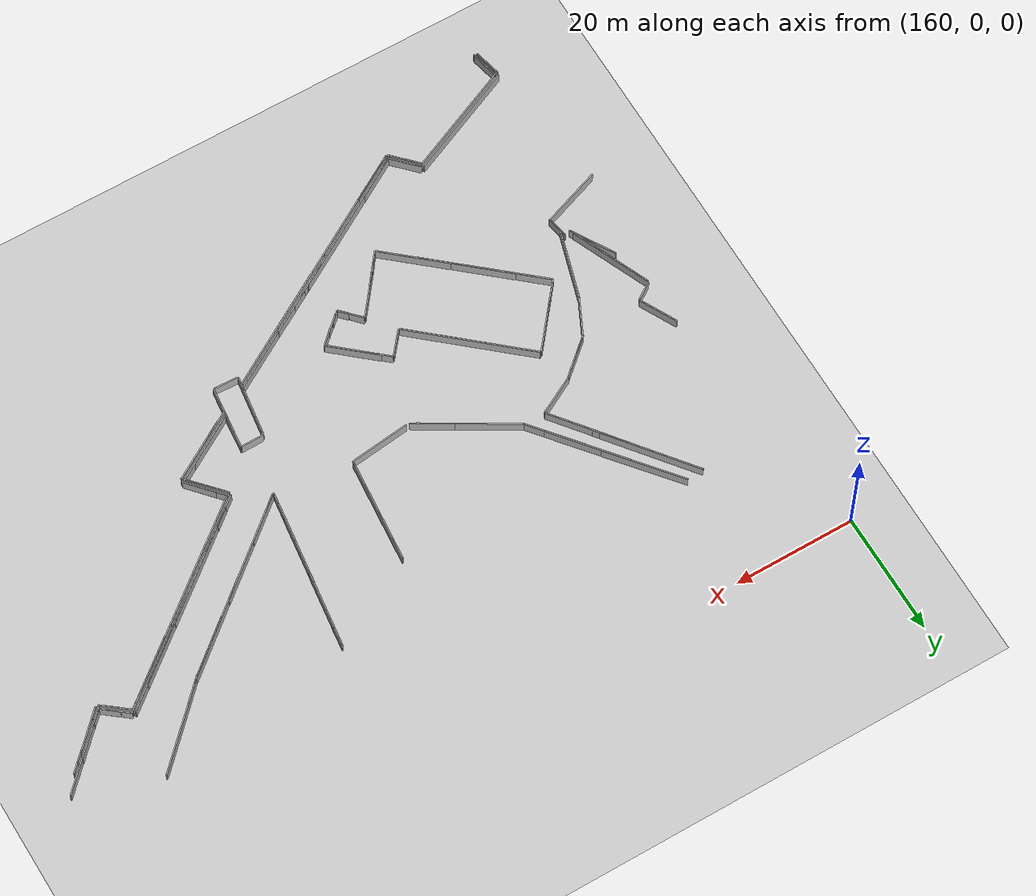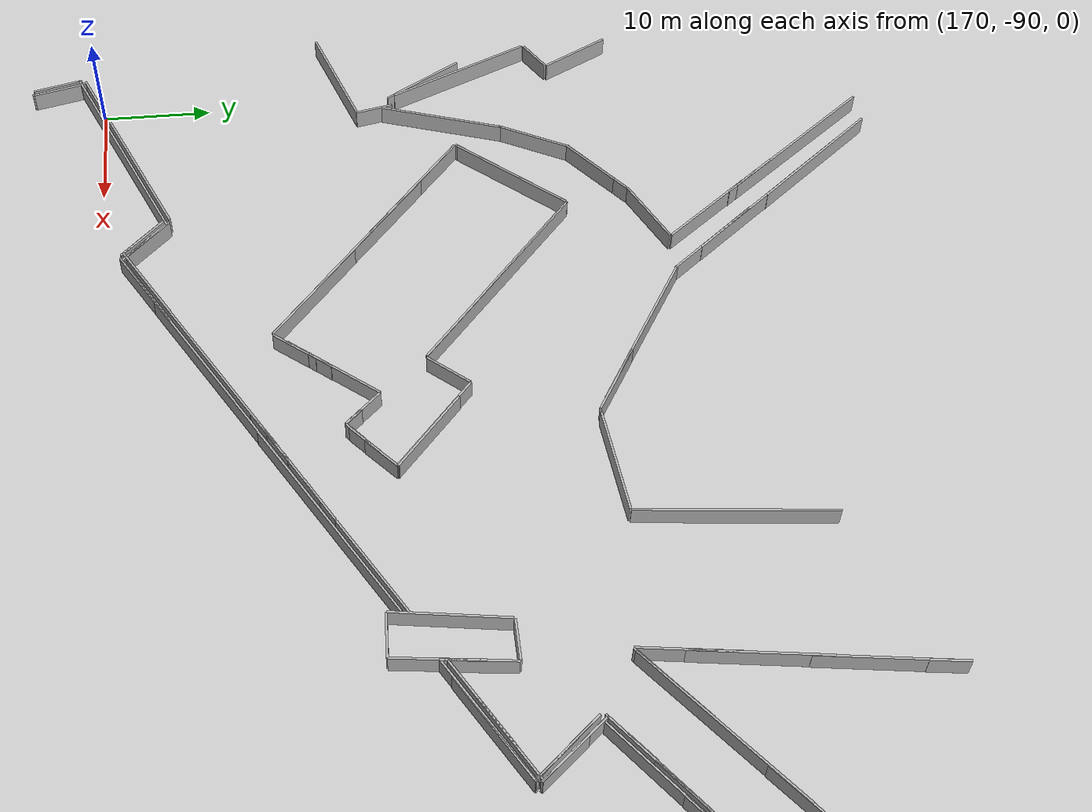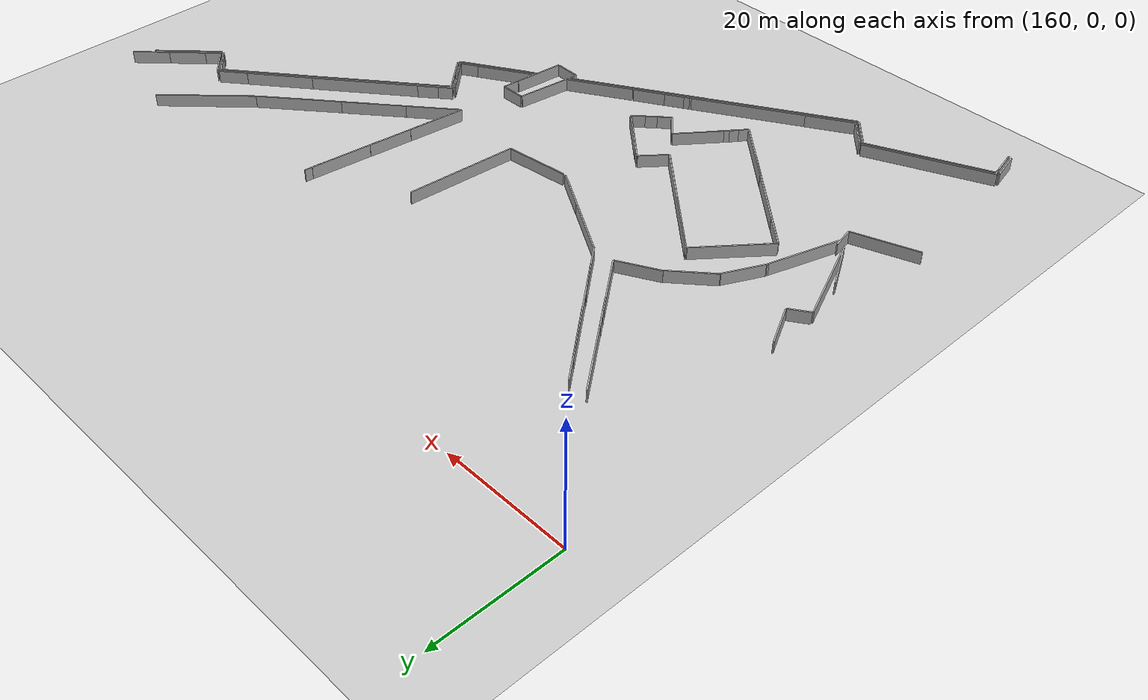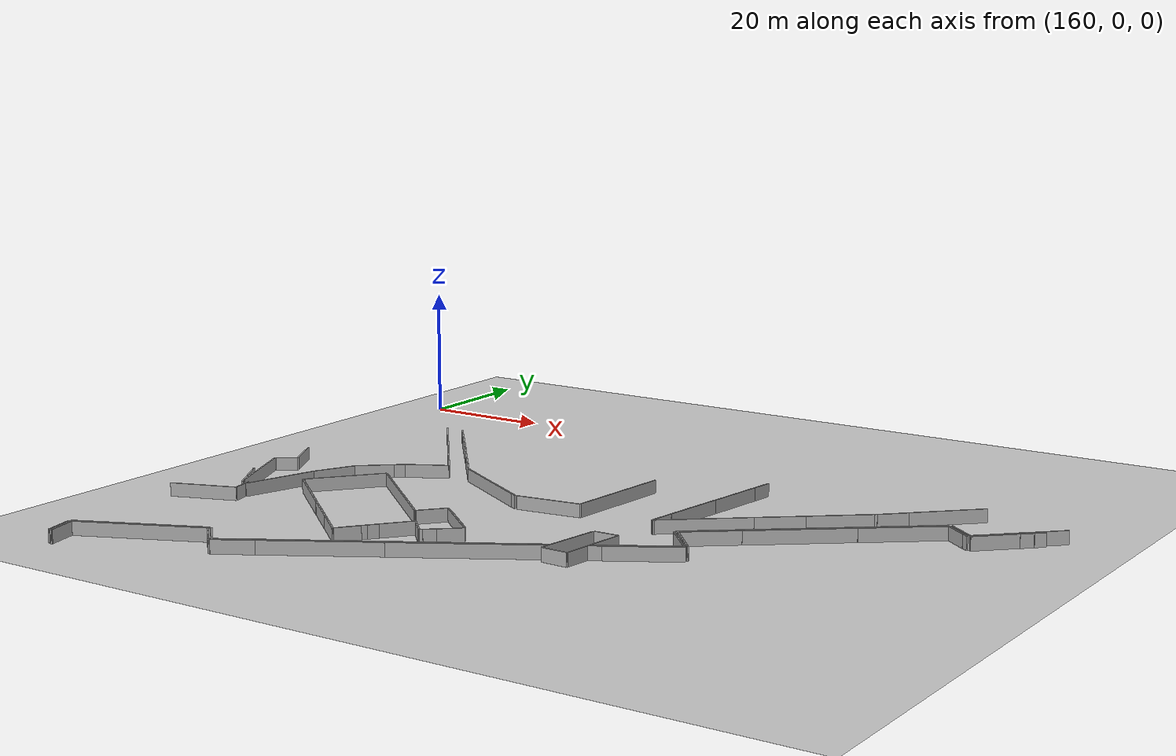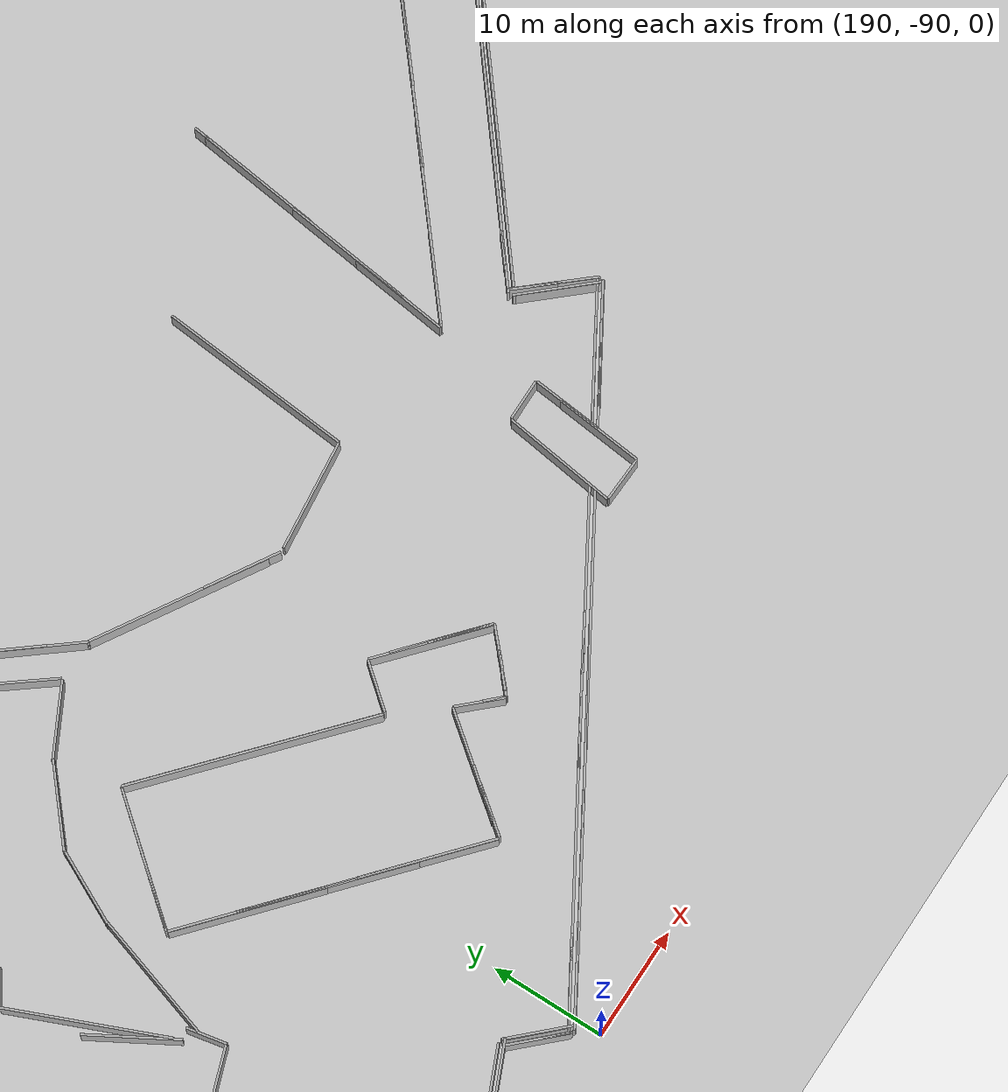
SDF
<sdf version="1.7">
 <world name="slam_world">
  <model name="ground_plane">
   <static>1</static>
   <link name="link">
    <collision name="collision">
     <geometry><plane><normal>0 0 1</normal><size>100 100</size></plane></geometry>
    </collision>
    <visual name="visual">
     <geometry><plane><normal>0 0 1</normal><size>100 100</size></plane></geometry>
     <material>
      <ambient>0.8 0.8 0.8 1</ambient>
      <diffuse>0.8 0.8 0.8 1</diffuse>
      <specular>0.8 0.8 0.8 1</specular>
     </material>
    </visual>
   </link>
  </model>
  <model name="wall_21">
   <static>1</static>
   <pose>257.001 -26.325 1 0 -0 0.741947</pose>
   <link name="link">
    <collision name="collision"><geometry><box><size>0.813941 0.2 2</size></box></geometry></collision>
    <visual name="visual">
     <geometry><box><size>0.813941 0.2 2</size></box></geometry>
     <material><ambient>0.5 0.5 0.5 1</ambient><diffuse>0.7 0.7 0.7 1</diffuse></material>
    </visual>
   </link>
  </model>
  <model name="wall_24">
   <static>1</static>
   <pose>206.051 -78 1 0 -0 0.539799</pose>
   <link name="link">
    <collision name="collision"><geometry><box><size>27.6284 0.2 2</size></box></geometry></collision>
    <visual name="visual">
     <geometry><box><size>27.6284 0.2 2</size></box></geometry>
     <material><ambient>0.5 0.5 0.5 1</ambient><diffuse>0.7 0.7 0.7 1</diffuse></material>
    </visual>
   </link>
  </model>
  <model name="wall_25">
   <static>1</static>
   <pose>199.426 -81.375 1 0 -0 0.539749</pose>
   <link name="link">
    <collision name="collision"><geometry><box><size>25.5876 0.2 2</size></box></geometry></collision>
    <visual name="visual">
     <geometry><box><size>25.5876 0.2 2</size></box></geometry>
     <material><ambient>0.5 0.5 0.5 1</ambient><diffuse>0.7 0.7 0.7 1</diffuse></material>
    </visual>
   </link>
  </model>
  <model name="wall_36">
   <static>1</static>
   <pose>218.126 -70.8 1 0 -0 0.540019</pose>
   <link name="link">
    <collision name="collision"><geometry><box><size>21.3944 0.2 2</size></box></geometry></collision>
    <visual name="visual">
     <geometry><box><size>21.3944 0.2 2</size></box></geometry>
     <material><ambient>0.5 0.5 0.5 1</ambient><diffuse>0.7 0.7 0.7 1</diffuse></material>
    </visual>
   </link>
  </model>
  <model name="wall_43">
   <static>1</static>
   <pose>182.876 -61.05 1 0 0 -0.71275</pose>
   <link name="link">
    <collision name="collision"><geometry><box><size>13.1515 0.2 2</size></box></geometry></collision>
    <visual name="visual">
     <geometry><box><size>13.1515 0.2 2</size></box></geometry>
     <material><ambient>0.5 0.5 0.5 1</ambient><diffuse>0.7 0.7 0.7 1</diffuse></material>
    </visual>
   </link>
  </model>
  <model name="wall_47">
   <static>1</static>
   <pose>175.776 -87.725 1 0 -0 0.419509</pose>
   <link name="link">
    <collision name="collision"><geometry><box><size>19.7637 0.2 2</size></box></geometry></collision>
    <visual name="visual">
     <geometry><box><size>19.7637 0.2 2</size></box></geometry>
     <material><ambient>0.5 0.5 0.5 1</ambient><diffuse>0.7 0.7 0.7 1</diffuse></material>
    </visual>
   </link>
  </model>
  <model name="wall_49">
   <static>1</static>
   <pose>193.976 -54.1 1 0 0 -0.715593</pose>
   <link name="link">
    <collision name="collision"><geometry><box><size>21.7966 0.2 2</size></box></geometry></collision>
    <visual name="visual">
     <geometry><box><size>21.7966 0.2 2</size></box></geometry>
     <material><ambient>0.5 0.5 0.5 1</ambient><diffuse>0.7 0.7 0.7 1</diffuse></material>
    </visual>
   </link>
  </model>
  <model name="wall_54">
   <static>1</static>
   <pose>274.076 -27.625 1 0 -0 0.785398</pose>
   <link name="link">
    <collision name="collision"><geometry><box><size>7.56604 0.2 2</size></box></geometry></collision>
    <visual name="visual">
     <geometry><box><size>7.56604 0.2 2</size></box></geometry>
     <material><ambient>0.5 0.5 0.5 1</ambient><diffuse>0.7 0.7 0.7 1</diffuse></material>
    </visual>
   </link>
  </model>
  <model name="wall_56">
   <static>1</static>
   <pose>181.751 -51.85 1 0 -0 0.88848</pose>
   <link name="link">
    <collision name="collision"><geometry><box><size>12.3693 0.2 2</size></box></geometry></collision>
    <visual name="visual">
     <geometry><box><size>12.3693 0.2 2</size></box></geometry>
     <material><ambient>0.5 0.5 0.5 1</ambient><diffuse>0.7 0.7 0.7 1</diffuse></material>
    </visual>
   </link>
  </model>
  <model name="wall_62">
   <static>1</static>
   <pose>277.051 -24 1 0 -0 0.785398</pose>
   <link name="link">
    <collision name="collision"><geometry><box><size>11.4551 0.2 2</size></box></geometry></collision>
    <visual name="visual">
     <geometry><box><size>11.4551 0.2 2</size></box></geometry>
     <material><ambient>0.5 0.5 0.5 1</ambient><diffuse>0.7 0.7 0.7 1</diffuse></material>
    </visual>
   </link>
  </model>
  <model name="wall_63">
   <static>1</static>
   <pose>180.026 -24.325 1 0 0 -0.909753</pose>
   <link name="link">
    <collision name="collision"><geometry><box><size>16.5325 0.2 2</size></box></geometry></collision>
    <visual name="visual">
     <geometry><box><size>16.5325 0.2 2</size></box></geometry>
     <material><ambient>0.5 0.5 0.5 1</ambient><diffuse>0.7 0.7 0.7 1</diffuse></material>
    </visual>
   </link>
  </model>
  <model name="wall_64">
   <static>1</static>
   <pose>168.301 -55.525 1 0 0 -1.16917</pose>
   <link name="link">
    <collision name="collision"><geometry><box><size>14.0696 0.2 2</size></box></geometry></collision>
    <visual name="visual">
     <geometry><box><size>14.0696 0.2 2</size></box></geometry>
     <material><ambient>0.5 0.5 0.5 1</ambient><diffuse>0.7 0.7 0.7 1</diffuse></material>
    </visual>
   </link>
  </model>
  <model name="wall_66">
   <static>1</static>
   <pose>187.476 -33.975 1 0 0 -0.907969</pose>
   <link name="link">
    <collision name="collision"><geometry><box><size>9.83184 0.2 2</size></box></geometry></collision>
    <visual name="visual">
     <geometry><box><size>9.83184 0.2 2</size></box></geometry>
     <material><ambient>0.5 0.5 0.5 1</ambient><diffuse>0.7 0.7 0.7 1</diffuse></material>
    </visual>
   </link>
  </model>
  <model name="wall_69">
   <static>1</static>
   <pose>176.026 -88.125 1 0 -0 0.418966</pose>
   <link name="link">
    <collision name="collision"><geometry><box><size>20.5252 0.2 2</size></box></geometry></collision>
    <visual name="visual">
     <geometry><box><size>20.5252 0.2 2</size></box></geometry>
     <material><ambient>0.5 0.5 0.5 1</ambient><diffuse>0.7 0.7 0.7 1</diffuse></material>
    </visual>
   </link>
  </model>
  <model name="wall_70">
   <static>1</static>
   <pose>190.401 -67.5 1 0 0 -0.714091</pose>
   <link name="link">
    <collision name="collision"><geometry><box><size>21.8344 0.2 2</size></box></geometry></collision>
    <visual name="visual">
     <geometry><box><size>21.8344 0.2 2</size></box></geometry>
     <material><ambient>0.5 0.5 0.5 1</ambient><diffuse>0.7 0.7 0.7 1</diffuse></material>
    </visual>
   </link>
  </model>
  <model name="wall_71">
   <static>1</static>
   <pose>256.126 -35.8 1 0 -0 0.680714</pose>
   <link name="link">
    <collision name="collision"><geometry><box><size>28.7599 0.2 2</size></box></geometry></collision>
    <visual name="visual">
     <geometry><box><size>28.7599 0.2 2</size></box></geometry>
     <material><ambient>0.5 0.5 0.5 1</ambient><diffuse>0.7 0.7 0.7 1</diffuse></material>
    </visual>
   </link>
  </model>
  <model name="wall_77">
   <static>1</static>
   <pose>194.051 -54.125 1 0 0 -0.715366</pose>
   <link name="link">
    <collision name="collision"><geometry><box><size>21.7261 0.2 2</size></box></geometry></collision>
    <visual name="visual">
     <geometry><box><size>21.7261 0.2 2</size></box></geometry>
     <material><ambient>0.5 0.5 0.5 1</ambient><diffuse>0.7 0.7 0.7 1</diffuse></material>
    </visual>
   </link>
  </model>
  <model name="wall_81">
   <static>1</static>
   <pose>252.501 -38.1 1 0 -0 0.679305</pose>
   <link name="link">
    <collision name="collision"><geometry><box><size>27.3775 0.2 2</size></box></geometry></collision>
    <visual name="visual">
     <geometry><box><size>27.3775 0.2 2</size></box></geometry>
     <material><ambient>0.5 0.5 0.5 1</ambient><diffuse>0.7 0.7 0.7 1</diffuse></material>
    </visual>
   </link>
  </model>
  <model name="wall_93">
   <static>1</static>
   <pose>237.476 -58.675 1 0 -0 0.54042</pose>
   <link name="link">
    <collision name="collision"><geometry><box><size>12.5365 0.2 2</size></box></geometry></collision>
    <visual name="visual">
     <geometry><box><size>12.5365 0.2 2</size></box></geometry>
     <material><ambient>0.5 0.5 0.5 1</ambient><diffuse>0.7 0.7 0.7 1</diffuse></material>
    </visual>
   </link>
  </model>
  <model name="wall_94">
   <static>1</static>
   <pose>174.276 -57.65 1 0 -0 1.27448</pose>
   <link name="link">
    <collision name="collision"><geometry><box><size>11.8149 0.2 2</size></box></geometry></collision>
    <visual name="visual">
     <geometry><box><size>11.8149 0.2 2</size></box></geometry>
     <material><ambient>0.5 0.5 0.5 1</ambient><diffuse>0.7 0.7 0.7 1</diffuse></material>
    </visual>
   </link>
  </model>
  <model name="wall_100">
   <static>1</static>
   <pose>182.126 -22.9 1 0 0 -0.890948</pose>
   <link name="link">
    <collision name="collision"><geometry><box><size>13.7591 0.2 2</size></box></geometry></collision>
    <visual name="visual">
     <geometry><box><size>13.7591 0.2 2</size></box></geometry>
     <material><ambient>0.5 0.5 0.5 1</ambient><diffuse>0.7 0.7 0.7 1</diffuse></material>
    </visual>
   </link>
  </model>
  <model name="wall_109">
   <static>1</static>
   <pose>257.876 -25.475 1 0 -0 0.785398</pose>
   <link name="link">
    <collision name="collision"><geometry><box><size>4.59619 0.2 2</size></box></geometry></collision>
    <visual name="visual">
     <geometry><box><size>4.59619 0.2 2</size></box></geometry>
     <material><ambient>0.5 0.5 0.5 1</ambient><diffuse>0.7 0.7 0.7 1</diffuse></material>
    </visual>
   </link>
  </model>
  <model name="wall_114">
   <static>1</static>
   <pose>237.401 -59.25 1 0 -0 0.54042</pose>
   <link name="link">
    <collision name="collision"><geometry><box><size>12.8281 0.2 2</size></box></geometry></collision>
    <visual name="visual">
     <geometry><box><size>12.8281 0.2 2</size></box></geometry>
     <material><ambient>0.5 0.5 0.5 1</ambient><diffuse>0.7 0.7 0.7 1</diffuse></material>
    </visual>
   </link>
  </model>
  <model name="wall_118">
   <static>1</static>
   <pose>222.901 -67.375 1 0 -0 0.539611</pose>
   <link name="link">
    <collision name="collision"><geometry><box><size>10.6072 0.2 2</size></box></geometry></collision>
    <visual name="visual">
     <geometry><box><size>10.6072 0.2 2</size></box></geometry>
     <material><ambient>0.5 0.5 0.5 1</ambient><diffuse>0.7 0.7 0.7 1</diffuse></material>
    </visual>
   </link>
  </model>
  <model name="wall_123">
   <static>1</static>
   <pose>246.951 -43.2 1 0 -0 0.679684</pose>
   <link name="link">
    <collision name="collision"><geometry><box><size>22.1145 0.2 2</size></box></geometry></collision>
    <visual name="visual">
     <geometry><box><size>22.1145 0.2 2</size></box></geometry>
     <material><ambient>0.5 0.5 0.5 1</ambient><diffuse>0.7 0.7 0.7 1</diffuse></material>
    </visual>
   </link>
  </model>
  <model name="wall_127">
   <static>1</static>
   <pose>246.351 -43.05 1 0 -0 0.680355</pose>
   <link name="link">
    <collision name="collision"><geometry><box><size>22.2551 0.2 2</size></box></geometry></collision>
    <visual name="visual">
     <geometry><box><size>22.2551 0.2 2</size></box></geometry>
     <material><ambient>0.5 0.5 0.5 1</ambient><diffuse>0.7 0.7 0.7 1</diffuse></material>
    </visual>
   </link>
  </model>
  <model name="wall_131">
   <static>1</static>
   <pose>239.401 -41.05 1 0 -0 0.696142</pose>
   <link name="link">
    <collision name="collision"><geometry><box><size>18.2453 0.2 2</size></box></geometry></collision>
    <visual name="visual">
     <geometry><box><size>18.2453 0.2 2</size></box></geometry>
     <material><ambient>0.5 0.5 0.5 1</ambient><diffuse>0.7 0.7 0.7 1</diffuse></material>
    </visual>
   </link>
  </model>
  <model name="wall_138">
   <static>1</static>
   <pose>186.051 -27.8 1 0 0 -0.892004</pose>
   <link name="link">
    <collision name="collision"><geometry><box><size>19.272 0.2 2</size></box></geometry></collision>
    <visual name="visual">
     <geometry><box><size>19.272 0.2 2</size></box></geometry>
     <material><ambient>0.5 0.5 0.5 1</ambient><diffuse>0.7 0.7 0.7 1</diffuse></material>
    </visual>
   </link>
  </model>
  <model name="wall_152">
   <static>1</static>
   <pose>258.876 -32.975 1 0 -0 0.679786</pose>
   <link name="link">
    <collision name="collision"><geometry><box><size>20.1232 0.2 2</size></box></geometry></collision>
    <visual name="visual">
     <geometry><box><size>20.1232 0.2 2</size></box></geometry>
     <material><ambient>0.5 0.5 0.5 1</ambient><diffuse>0.7 0.7 0.7 1</diffuse></material>
    </visual>
   </link>
  </model>
  <model name="wall_155">
   <static>1</static>
   <pose>201.051 -42.025 1 0 0 -0.540948</pose>
   <link name="link">
    <collision name="collision"><geometry><box><size>16.2152 0.2 2</size></box></geometry></collision>
    <visual name="visual">
     <geometry><box><size>16.2152 0.2 2</size></box></geometry>
     <material><ambient>0.5 0.5 0.5 1</ambient><diffuse>0.7 0.7 0.7 1</diffuse></material>
    </visual>
   </link>
  </model>
  <model name="wall_156">
   <static>1</static>
   <pose>220.126 -36.75 1 0 -0 1.48246</pose>
   <link name="link">
    <collision name="collision"><geometry><box><size>17.5685 0.2 2</size></box></geometry></collision>
    <visual name="visual">
     <geometry><box><size>17.5685 0.2 2</size></box></geometry>
     <material><ambient>0.5 0.5 0.5 1</ambient><diffuse>0.7 0.7 0.7 1</diffuse></material>
    </visual>
   </link>
  </model>
  <model name="wall_162">
   <static>1</static>
   <pose>233.401 -37.025 1 0 -0 1.44488</pose>
   <link name="link">
    <collision name="collision"><geometry><box><size>11.9446 0.2 2</size></box></geometry></collision>
    <visual name="visual">
     <geometry><box><size>11.9446 0.2 2</size></box></geometry>
     <material><ambient>0.5 0.5 0.5 1</ambient><diffuse>0.7 0.7 0.7 1</diffuse></material>
    </visual>
   </link>
  </model>
  <model name="wall_172">
   <static>1</static>
   <pose>209.376 -61.15 1 0 0 -0.715744</pose>
   <link name="link">
    <collision name="collision"><geometry><box><size>10.6678 0.2 2</size></box></geometry></collision>
    <visual name="visual">
     <geometry><box><size>10.6678 0.2 2</size></box></geometry>
     <material><ambient>0.5 0.5 0.5 1</ambient><diffuse>0.7 0.7 0.7 1</diffuse></material>
    </visual>
   </link>
  </model>
  <model name="wall_188">
   <static>1</static>
   <pose>203.376 -68.65 1 0 -0 0.909186</pose>
   <link name="link">
    <collision name="collision"><geometry><box><size>7.73127 0.2 2</size></box></geometry></collision>
    <visual name="visual">
     <geometry><box><size>7.73127 0.2 2</size></box></geometry>
     <material><ambient>0.5 0.5 0.5 1</ambient><diffuse>0.7 0.7 0.7 1</diffuse></material>
    </visual>
   </link>
  </model>
  <model name="wall_190">
   <static>1</static>
   <pose>273.876 -27.125 1 0 -0 0.785398</pose>
   <link name="link">
    <collision name="collision"><geometry><box><size>8.69741 0.2 2</size></box></geometry></collision>
    <visual name="visual">
     <geometry><box><size>8.69741 0.2 2</size></box></geometry>
     <material><ambient>0.5 0.5 0.5 1</ambient><diffuse>0.7 0.7 0.7 1</diffuse></material>
    </visual>
   </link>
  </model>
  <model name="wall_208">
   <static>1</static>
   <pose>197.376 -83.175 1 0 -0 0.54042</pose>
   <link name="link">
    <collision name="collision"><geometry><box><size>19.5337 0.2 2</size></box></geometry></collision>
    <visual name="visual">
     <geometry><box><size>19.5337 0.2 2</size></box></geometry>
     <material><ambient>0.5 0.5 0.5 1</ambient><diffuse>0.7 0.7 0.7 1</diffuse></material>
    </visual>
   </link>
  </model>
  <model name="wall_209">
   <static>1</static>
   <pose>240.301 -53.375 1 0 0 -0.838488</pose>
   <link name="link">
    <collision name="collision"><geometry><box><size>7.32888 0.2 2</size></box></geometry></collision>
    <visual name="visual">
     <geometry><box><size>7.32888 0.2 2</size></box></geometry>
     <material><ambient>0.5 0.5 0.5 1</ambient><diffuse>0.7 0.7 0.7 1</diffuse></material>
    </visual>
   </link>
  </model>
  <model name="wall_210">
   <static>1</static>
   <pose>249.826 -32.375 1 0 -0 0.697972</pose>
   <link name="link">
    <collision name="collision"><geometry><box><size>17.8164 0.2 2</size></box></geometry></collision>
    <visual name="visual">
     <geometry><box><size>17.8164 0.2 2</size></box></geometry>
     <material><ambient>0.5 0.5 0.5 1</ambient><diffuse>0.7 0.7 0.7 1</diffuse></material>
    </visual>
   </link>
  </model>
  <model name="wall_217">
   <static>1</static>
   <pose>231.826 -62.75 1 0 -0 1.46361</pose>
   <link name="link">
    <collision name="collision"><geometry><box><size>7.9456 0.2 2</size></box></geometry></collision>
    <visual name="visual">
     <geometry><box><size>7.9456 0.2 2</size></box></geometry>
     <material><ambient>0.5 0.5 0.5 1</ambient><diffuse>0.7 0.7 0.7 1</diffuse></material>
    </visual>
   </link>
  </model>
  <model name="wall_225">
   <static>1</static>
   <pose>210.076 -61.675 1 0 0 -0.712945</pose>
   <link name="link">
    <collision name="collision"><geometry><box><size>8.79119 0.2 2</size></box></geometry></collision>
    <visual name="visual">
     <geometry><box><size>8.79119 0.2 2</size></box></geometry>
     <material><ambient>0.5 0.5 0.5 1</ambient><diffuse>0.7 0.7 0.7 1</diffuse></material>
    </visual>
   </link>
  </model>
  <model name="wall_231">
   <static>1</static>
   <pose>227.951 -61.4 1 0 -0 1.43439</pose>
   <link name="link">
    <collision name="collision"><geometry><box><size>10.2956 0.2 2</size></box></geometry></collision>
    <visual name="visual">
     <geometry><box><size>10.2956 0.2 2</size></box></geometry>
     <material><ambient>0.5 0.5 0.5 1</ambient><diffuse>0.7 0.7 0.7 1</diffuse></material>
    </visual>
   </link>
  </model>
  <model name="wall_243">
   <static>1</static>
   <pose>214.351 -46.15 1 0 -0 0.120624</pose>
   <link name="link">
    <collision name="collision"><geometry><box><size>9.97246 0.2 2</size></box></geometry></collision>
    <visual name="visual">
     <geometry><box><size>9.97246 0.2 2</size></box></geometry>
     <material><ambient>0.5 0.5 0.5 1</ambient><diffuse>0.7 0.7 0.7 1</diffuse></material>
    </visual>
   </link>
  </model>
  <model name="wall_246">
   <static>1</static>
   <pose>169.301 -59.125 1 0 0 -1.04405</pose>
   <link name="link">
    <collision name="collision"><geometry><box><size>8.15552 0.2 2</size></box></geometry></collision>
    <visual name="visual">
     <geometry><box><size>8.15552 0.2 2</size></box></geometry>
     <material><ambient>0.5 0.5 0.5 1</ambient><diffuse>0.7 0.7 0.7 1</diffuse></material>
    </visual>
   </link>
  </model>
  <model name="wall_252">
   <static>1</static>
   <pose>210.501 -67.25 1 0 -0 0.745419</pose>
   <link name="link">
    <collision name="collision"><geometry><box><size>3.53836 0.2 2</size></box></geometry></collision>
    <visual name="visual">
     <geometry><box><size>3.53836 0.2 2</size></box></geometry>
     <material><ambient>0.5 0.5 0.5 1</ambient><diffuse>0.7 0.7 0.7 1</diffuse></material>
    </visual>
   </link>
  </model>
  <model name="wall_264">
   <static>1</static>
   <pose>234.676 -27.275 1 0 -0 1.44483</pose>
   <link name="link">
    <collision name="collision"><geometry><box><size>11.5414 0.2 2</size></box></geometry></collision>
    <visual name="visual">
     <geometry><box><size>11.5414 0.2 2</size></box></geometry>
     <material><ambient>0.5 0.5 0.5 1</ambient><diffuse>0.7 0.7 0.7 1</diffuse></material>
    </visual>
   </link>
  </model>
  <model name="wall_270">
   <static>1</static>
   <pose>212.001 -65.9 1 0 -0 0.748378</pose>
   <link name="link">
    <collision name="collision"><geometry><box><size>3.82099 0.2 2</size></box></geometry></collision>
    <visual name="visual">
     <geometry><box><size>3.82099 0.2 2</size></box></geometry>
     <material><ambient>0.5 0.5 0.5 1</ambient><diffuse>0.7 0.7 0.7 1</diffuse></material>
    </visual>
   </link>
  </model>
  <model name="wall_280">
   <static>1</static>
   <pose>232.676 -42.525 1 0 -0 1.4444</pose>
   <link name="link">
    <collision name="collision"><geometry><box><size>9.12277 0.2 2</size></box></geometry></collision>
    <visual name="visual">
     <geometry><box><size>9.12277 0.2 2</size></box></geometry>
     <material><ambient>0.5 0.5 0.5 1</ambient><diffuse>0.7 0.7 0.7 1</diffuse></material>
    </visual>
   </link>
  </model>
  <model name="wall_285">
   <static>1</static>
   <pose>194.251 -70.8 1 0 0 -0.713235</pose>
   <link name="link">
    <collision name="collision"><geometry><box><size>11.7686 0.2 2</size></box></geometry></collision>
    <visual name="visual">
     <geometry><box><size>11.7686 0.2 2</size></box></geometry>
     <material><ambient>0.5 0.5 0.5 1</ambient><diffuse>0.7 0.7 0.7 1</diffuse></material>
    </visual>
   </link>
  </model>
  <model name="wall_300">
   <static>1</static>
   <pose>187.476 -39.55 1 0 -0 0.486519</pose>
   <link name="link">
    <collision name="collision"><geometry><box><size>6.84416 0.2 2</size></box></geometry></collision>
    <visual name="visual">
     <geometry><box><size>6.84416 0.2 2</size></box></geometry>
     <material><ambient>0.5 0.5 0.5 1</ambient><diffuse>0.7 0.7 0.7 1</diffuse></material>
    </visual>
   </link>
  </model>
  <model name="wall_305">
   <static>1</static>
   <pose>166.951 -47.95 1 0 -0 0.588003</pose>
   <link name="link">
    <collision name="collision"><geometry><box><size>3.245 0.2 2</size></box></geometry></collision>
    <visual name="visual">
     <geometry><box><size>3.245 0.2 2</size></box></geometry>
     <material><ambient>0.5 0.5 0.5 1</ambient><diffuse>0.7 0.7 0.7 1</diffuse></material>
    </visual>
   </link>
  </model>
  <model name="wall_314">
   <static>1</static>
   <pose>199.976 -73.125 1 0 -0 0.914309</pose>
   <link name="link">
    <collision name="collision"><geometry><box><size>3.85033 0.2 2</size></box></geometry></collision>
    <visual name="visual">
     <geometry><box><size>3.85033 0.2 2</size></box></geometry>
     <material><ambient>0.5 0.5 0.5 1</ambient><diffuse>0.7 0.7 0.7 1</diffuse></material>
    </visual>
   </link>
  </model>
  <model name="wall_321">
   <static>1</static>
   <pose>268.501 -28.425 1 0 0 -0.672833</pose>
   <link name="link">
    <collision name="collision"><geometry><box><size>4.09176 0.2 2</size></box></geometry></collision>
    <visual name="visual">
     <geometry><box><size>4.09176 0.2 2</size></box></geometry>
     <material><ambient>0.5 0.5 0.5 1</ambient><diffuse>0.7 0.7 0.7 1</diffuse></material>
    </visual>
   </link>
  </model>
  <model name="wall_324">
   <static>1</static>
   <pose>181.726 -43.6 1 0 -0 0.715744</pose>
   <link name="link">
    <collision name="collision"><geometry><box><size>7.61988 0.2 2</size></box></geometry></collision>
    <visual name="visual">
     <geometry><box><size>7.61988 0.2 2</size></box></geometry>
     <material><ambient>0.5 0.5 0.5 1</ambient><diffuse>0.7 0.7 0.7 1</diffuse></material>
    </visual>
   </link>
  </model>
  <model name="wall_329">
   <static>1</static>
   <pose>240.426 -52.75 1 0 0 -0.854413</pose>
   <link name="link">
    <collision name="collision"><geometry><box><size>7.69042 0.2 2</size></box></geometry></collision>
    <visual name="visual">
     <geometry><box><size>7.69042 0.2 2</size></box></geometry>
     <material><ambient>0.5 0.5 0.5 1</ambient><diffuse>0.7 0.7 0.7 1</diffuse></material>
    </visual>
   </link>
  </model>
  <model name="wall_332">
   <static>1</static>
   <pose>213.876 -72.75 1 0 -0 0.529957</pose>
   <link name="link">
    <collision name="collision"><geometry><box><size>5.73694 0.2 2</size></box></geometry></collision>
    <visual name="visual">
     <geometry><box><size>5.73694 0.2 2</size></box></geometry>
     <material><ambient>0.5 0.5 0.5 1</ambient><diffuse>0.7 0.7 0.7 1</diffuse></material>
    </visual>
   </link>
  </model>
  <model name="wall_339">
   <static>1</static>
   <pose>186.826 -86.2 1 0 0 -0.805003</pose>
   <link name="link">
    <collision name="collision"><geometry><box><size>5.41041 0.2 2</size></box></geometry></collision>
    <visual name="visual">
     <geometry><box><size>5.41041 0.2 2</size></box></geometry>
     <material><ambient>0.5 0.5 0.5 1</ambient><diffuse>0.7 0.7 0.7 1</diffuse></material>
    </visual>
   </link>
  </model>
  <model name="wall_349">
   <static>1</static>
   <pose>166.826 -43.925 1 0 0 -1.09712</pose>
   <link name="link">
    <collision name="collision"><geometry><box><size>6.68618 0.2 2</size></box></geometry></collision>
    <visual name="visual">
     <geometry><box><size>6.68618 0.2 2</size></box></geometry>
     <material><ambient>0.5 0.5 0.5 1</ambient><diffuse>0.7 0.7 0.7 1</diffuse></material>
    </visual>
   </link>
  </model>
  <model name="wall_353">
   <static>1</static>
   <pose>191.076 -34.075 1 0 0 -0.890642</pose>
   <link name="link">
    <collision name="collision"><geometry><box><size>10.0968 0.2 2</size></box></geometry></collision>
    <visual name="visual">
     <geometry><box><size>10.0968 0.2 2</size></box></geometry>
     <material><ambient>0.5 0.5 0.5 1</ambient><diffuse>0.7 0.7 0.7 1</diffuse></material>
    </visual>
   </link>
  </model>
  <model name="wall_355">
   <static>1</static>
   <pose>168.151 -67.45 1 0 -0 0.346286</pose>
   <link name="link">
    <collision name="collision"><geometry><box><size>10.3121 0.2 2</size></box></geometry></collision>
    <visual name="visual">
     <geometry><box><size>10.3121 0.2 2</size></box></geometry>
     <material><ambient>0.5 0.5 0.5 1</ambient><diffuse>0.7 0.7 0.7 1</diffuse></material>
    </visual>
   </link>
  </model>
  <model name="wall_369">
   <static>1</static>
   <pose>203.851 -59.475 1 0 -0 0.885834</pose>
   <link name="link">
    <collision name="collision"><geometry><box><size>4.58394 0.2 2</size></box></geometry></collision>
    <visual name="visual">
     <geometry><box><size>4.58394 0.2 2</size></box></geometry>
     <material><ambient>0.5 0.5 0.5 1</ambient><diffuse>0.7 0.7 0.7 1</diffuse></material>
    </visual>
   </link>
  </model>
  <model name="wall_384">
   <static>1</static>
   <pose>269.801 -28.775 1 0 0 -0.686818</pose>
   <link name="link">
    <collision name="collision"><geometry><box><size>3.23303 0.2 2</size></box></geometry></collision>
    <visual name="visual">
     <geometry><box><size>3.23303 0.2 2</size></box></geometry>
     <material><ambient>0.5 0.5 0.5 1</ambient><diffuse>0.7 0.7 0.7 1</diffuse></material>
    </visual>
   </link>
  </model>
  <model name="wall_387">
   <static>1</static>
   <pose>167.126 -94.4 1 0 0 -1.34638</pose>
   <link name="link">
    <collision name="collision"><geometry><box><size>4.71831 0.2 2</size></box></geometry></collision>
    <visual name="visual">
     <geometry><box><size>4.71831 0.2 2</size></box></geometry>
     <material><ambient>0.5 0.5 0.5 1</ambient><diffuse>0.7 0.7 0.7 1</diffuse></material>
    </visual>
   </link>
  </model>
  <model name="wall_397">
   <static>1</static>
   <pose>187.201 -85.875 1 0 0 -0.80336</pose>
   <link name="link">
    <collision name="collision"><geometry><box><size>5.90529 0.2 2</size></box></geometry></collision>
    <visual name="visual">
     <geometry><box><size>5.90529 0.2 2</size></box></geometry>
     <material><ambient>0.5 0.5 0.5 1</ambient><diffuse>0.7 0.7 0.7 1</diffuse></material>
    </visual>
   </link>
  </model>
  <model name="wall_402">
   <static>1</static>
   <pose>177.376 -49.225 1 0 -0 1.11679</pose>
   <link name="link">
    <collision name="collision"><geometry><box><size>6.95449 0.2 2</size></box></geometry></collision>
    <visual name="visual">
     <geometry><box><size>6.95449 0.2 2</size></box></geometry>
     <material><ambient>0.5 0.5 0.5 1</ambient><diffuse>0.7 0.7 0.7 1</diffuse></material>
    </visual>
   </link>
  </model>
  <model name="wall_403">
   <static>1</static>
   <pose>252.476 -30.2 1 0 -0 0.697903</pose>
   <link name="link">
    <collision name="collision"><geometry><box><size>10.115 0.2 2</size></box></geometry></collision>
    <visual name="visual">
     <geometry><box><size>10.115 0.2 2</size></box></geometry>
     <material><ambient>0.5 0.5 0.5 1</ambient><diffuse>0.7 0.7 0.7 1</diffuse></material>
    </visual>
   </link>
  </model>
  <model name="wall_404">
   <static>1</static>
   <pose>235.451 -44.325 1 0 -0 0.697757</pose>
   <link name="link">
    <collision name="collision"><geometry><box><size>8.48248 0.2 2</size></box></geometry></collision>
    <visual name="visual">
     <geometry><box><size>8.48248 0.2 2</size></box></geometry>
     <material><ambient>0.5 0.5 0.5 1</ambient><diffuse>0.7 0.7 0.7 1</diffuse></material>
    </visual>
   </link>
  </model>
  <model name="wall_405">
   <static>1</static>
   <pose>268.751 -28.575 1 0 0 -0.678885</pose>
   <link name="link">
    <collision name="collision"><geometry><box><size>5.65354 0.2 2</size></box></geometry></collision>
    <visual name="visual">
     <geometry><box><size>5.65354 0.2 2</size></box></geometry>
     <material><ambient>0.5 0.5 0.5 1</ambient><diffuse>0.7 0.7 0.7 1</diffuse></material>
    </visual>
   </link>
  </model>
  <model name="wall_411">
   <static>1</static>
   <pose>167.651 -94.425 1 0 0 -1.34975</pose>
   <link name="link">
    <collision name="collision"><geometry><box><size>4.56098 0.2 2</size></box></geometry></collision>
    <visual name="visual">
     <geometry><box><size>4.56098 0.2 2</size></box></geometry>
     <material><ambient>0.5 0.5 0.5 1</ambient><diffuse>0.7 0.7 0.7 1</diffuse></material>
    </visual>
   </link>
  </model>
  <model name="wall_422">
   <static>1</static>
   <pose>262.276 -30.9 1 0 -0 0.679528</pose>
   <link name="link">
    <collision name="collision"><geometry><box><size>13.0485 0.2 2</size></box></geometry></collision>
    <visual name="visual">
     <geometry><box><size>13.0485 0.2 2</size></box></geometry>
     <material><ambient>0.5 0.5 0.5 1</ambient><diffuse>0.7 0.7 0.7 1</diffuse></material>
    </visual>
   </link>
  </model>
  <model name="wall_423">
   <static>1</static>
   <pose>207.276 -67.175 1 0 0 -0.818173</pose>
   <link name="link">
    <collision name="collision"><geometry><box><size>4.31567 0.2 2</size></box></geometry></collision>
    <visual name="visual">
     <geometry><box><size>4.31567 0.2 2</size></box></geometry>
     <material><ambient>0.5 0.5 0.5 1</ambient><diffuse>0.7 0.7 0.7 1</diffuse></material>
    </visual>
   </link>
  </model>
  <model name="wall_427">
   <static>1</static>
   <pose>230.626 -56.175 1 0 -0 0.013333</pose>
   <link name="link">
    <collision name="collision"><geometry><box><size>3.75033 0.2 2</size></box></geometry></collision>
    <visual name="visual">
     <geometry><box><size>3.75033 0.2 2</size></box></geometry>
     <material><ambient>0.5 0.5 0.5 1</ambient><diffuse>0.7 0.7 0.7 1</diffuse></material>
    </visual>
   </link>
  </model>
  <model name="wall_430">
   <static>1</static>
   <pose>208.851 -75.75 1 0 -0 0.548549</pose>
   <link name="link">
    <collision name="collision"><geometry><box><size>4.21901 0.2 2</size></box></geometry></collision>
    <visual name="visual">
     <geometry><box><size>4.21901 0.2 2</size></box></geometry>
     <material><ambient>0.5 0.5 0.5 1</ambient><diffuse>0.7 0.7 0.7 1</diffuse></material>
    </visual>
   </link>
  </model>
  <model name="wall_436">
   <static>1</static>
   <pose>261.776 -21.525 1 0 -0 0.785398</pose>
   <link name="link">
    <collision name="collision"><geometry><box><size>16.4756 0.2 2</size></box></geometry></collision>
    <visual name="visual">
     <geometry><box><size>16.4756 0.2 2</size></box></geometry>
     <material><ambient>0.5 0.5 0.5 1</ambient><diffuse>0.7 0.7 0.7 1</diffuse></material>
    </visual>
   </link>
  </model>
  <model name="wall_452">
   <static>1</static>
   <pose>240.251 -53.275 1 0 0 -0.836516</pose>
   <link name="link">
    <collision name="collision"><geometry><box><size>7.61134 0.2 2</size></box></geometry></collision>
    <visual name="visual">
     <geometry><box><size>7.61134 0.2 2</size></box></geometry>
     <material><ambient>0.5 0.5 0.5 1</ambient><diffuse>0.7 0.7 0.7 1</diffuse></material>
    </visual>
   </link>
  </model>
  <model name="wall_455">
   <static>1</static>
   <pose>277.051 -24.7 1 0 -0 0.785398</pose>
   <link name="link">
    <collision name="collision"><geometry><box><size>1.9799 0.2 2</size></box></geometry></collision>
    <visual name="visual">
     <geometry><box><size>1.9799 0.2 2</size></box></geometry>
     <material><ambient>0.5 0.5 0.5 1</ambient><diffuse>0.7 0.7 0.7 1</diffuse></material>
    </visual>
   </link>
  </model>
  <model name="wall_458">
   <static>1</static>
   <pose>232.226 -59.4 1 0 -0 1.46958</pose>
   <link name="link">
    <collision name="collision"><geometry><box><size>6.43292 0.2 2</size></box></geometry></collision>
    <visual name="visual">
     <geometry><box><size>6.43292 0.2 2</size></box></geometry>
     <material><ambient>0.5 0.5 0.5 1</ambient><diffuse>0.7 0.7 0.7 1</diffuse></material>
    </visual>
   </link>
  </model>
  <model name="wall_460">
   <static>1</static>
   <pose>201.576 -71 1 0 -0 0.898318</pose>
   <link name="link">
    <collision name="collision"><geometry><box><size>3.45145 0.2 2</size></box></geometry></collision>
    <visual name="visual">
     <geometry><box><size>3.45145 0.2 2</size></box></geometry>
     <material><ambient>0.5 0.5 0.5 1</ambient><diffuse>0.7 0.7 0.7 1</diffuse></material>
    </visual>
   </link>
  </model>
  <model name="wall_462">
   <static>1</static>
   <pose>229.326 -66.625 1 0 0 -0.03702</pose>
   <link name="link">
    <collision name="collision"><geometry><box><size>4.05278 0.2 2</size></box></geometry></collision>
    <visual name="visual">
     <geometry><box><size>4.05278 0.2 2</size></box></geometry>
     <material><ambient>0.5 0.5 0.5 1</ambient><diffuse>0.7 0.7 0.7 1</diffuse></material>
    </visual>
   </link>
  </model>
  <model name="wall_464">
   <static>1</static>
   <pose>167.551 -94.2 1 0 0 -1.344</pose>
   <link name="link">
    <collision name="collision"><geometry><box><size>5.33667 0.2 2</size></box></geometry></collision>
    <visual name="visual">
     <geometry><box><size>5.33667 0.2 2</size></box></geometry>
     <material><ambient>0.5 0.5 0.5 1</ambient><diffuse>0.7 0.7 0.7 1</diffuse></material>
    </visual>
   </link>
  </model>
  <model name="wall_467">
   <static>1</static>
   <pose>200.651 -72.2 1 0 -0 0.896055</pose>
   <link name="link">
    <collision name="collision"><geometry><box><size>3.20156 0.2 2</size></box></geometry></collision>
    <visual name="visual">
     <geometry><box><size>3.20156 0.2 2</size></box></geometry>
     <material><ambient>0.5 0.5 0.5 1</ambient><diffuse>0.7 0.7 0.7 1</diffuse></material>
    </visual>
   </link>
  </model>
  <model name="wall_468">
   <static>1</static>
   <pose>172.632 -64.0435 1 0 0 -1.37061</pose>
   <link name="link">
    <collision name="collision"><geometry><box><size>3.5203 0.2 2</size></box></geometry></collision>
    <visual name="visual">
     <geometry><box><size>3.5203 0.2 2</size></box></geometry>
     <material><ambient>0.5 0.5 0.5 1</ambient><diffuse>0.7 0.7 0.7 1</diffuse></material>
    </visual>
   </link>
  </model>
  <model name="wall_480">
   <static>1</static>
   <pose>216.126 -71.4 1 0 -0 0.531724</pose>
   <link name="link">
    <collision name="collision"><geometry><box><size>4.93077 0.2 2</size></box></geometry></collision>
    <visual name="visual">
     <geometry><box><size>4.93077 0.2 2</size></box></geometry>
     <material><ambient>0.5 0.5 0.5 1</ambient><diffuse>0.7 0.7 0.7 1</diffuse></material>
    </visual>
   </link>
  </model>
  <model name="wall_488">
   <static>1</static>
   <pose>268.651 -27.875 1 0 0 -0.684821</pose>
   <link name="link">
    <collision name="collision"><geometry><box><size>3.87331 0.2 2</size></box></geometry></collision>
    <visual name="visual">
     <geometry><box><size>3.87331 0.2 2</size></box></geometry>
     <material><ambient>0.5 0.5 0.5 1</ambient><diffuse>0.7 0.7 0.7 1</diffuse></material>
    </visual>
   </link>
  </model>
  <model name="wall_494">
   <static>1</static>
   <pose>191.901 -85.85 1 0 -0 0.54042</pose>
   <link name="link">
    <collision name="collision"><geometry><box><size>8.16333 0.2 2</size></box></geometry></collision>
    <visual name="visual">
     <geometry><box><size>8.16333 0.2 2</size></box></geometry>
     <material><ambient>0.5 0.5 0.5 1</ambient><diffuse>0.7 0.7 0.7 1</diffuse></material>
    </visual>
   </link>
  </model>
  <model name="wall_498">
   <static>1</static>
   <pose>184.626 -30.275 1 0 0 -0.898126</pose>
   <link name="link">
    <collision name="collision"><geometry><box><size>3.7716 0.2 2</size></box></geometry></collision>
    <visual name="visual">
     <geometry><box><size>3.7716 0.2 2</size></box></geometry>
     <material><ambient>0.5 0.5 0.5 1</ambient><diffuse>0.7 0.7 0.7 1</diffuse></material>
    </visual>
   </link>
  </model>
  <model name="wall_501">
   <static>1</static>
   <pose>206.026 -44.975 1 0 0 -0.537944</pose>
   <link name="link">
    <collision name="collision"><geometry><box><size>6.92856 0.2 2</size></box></geometry></collision>
    <visual name="visual">
     <geometry><box><size>6.92856 0.2 2</size></box></geometry>
     <material><ambient>0.5 0.5 0.5 1</ambient><diffuse>0.7 0.7 0.7 1</diffuse></material>
    </visual>
   </link>
  </model>
  <model name="wall_505">
   <static>1</static>
   <pose>271.976 -29.675 1 0 -0 0.785398</pose>
   <link name="link">
    <collision name="collision"><geometry><box><size>1.76777 0.2 2</size></box></geometry></collision>
    <visual name="visual">
     <geometry><box><size>1.76777 0.2 2</size></box></geometry>
     <material><ambient>0.5 0.5 0.5 1</ambient><diffuse>0.7 0.7 0.7 1</diffuse></material>
    </visual>
   </link>
  </model>
  <model name="wall_508">
   <static>1</static>
   <pose>239.226 -51.425 1 0 0 -0.853091</pose>
   <link name="link">
    <collision name="collision"><geometry><box><size>4.18151 0.2 2</size></box></geometry></collision>
    <visual name="visual">
     <geometry><box><size>4.18151 0.2 2</size></box></geometry>
     <material><ambient>0.5 0.5 0.5 1</ambient><diffuse>0.7 0.7 0.7 1</diffuse></material>
    </visual>
   </link>
  </model>
  <model name="wall_510">
   <static>1</static>
   <pose>235.351 -22.1 1 0 -0 1.45369</pose>
   <link name="link">
    <collision name="collision"><geometry><box><size>3.42345 0.2 2</size></box></geometry></collision>
    <visual name="visual">
     <geometry><box><size>3.42345 0.2 2</size></box></geometry>
     <material><ambient>0.5 0.5 0.5 1</ambient><diffuse>0.7 0.7 0.7 1</diffuse></material>
    </visual>
   </link>
  </model>
  <model name="wall_511">
   <static>1</static>
   <pose>241.176 -53.575 1 0 0 -0.851093</pose>
   <link name="link">
    <collision name="collision"><geometry><box><size>5.38563 0.2 2</size></box></geometry></collision>
    <visual name="visual">
     <geometry><box><size>5.38563 0.2 2</size></box></geometry>
     <material><ambient>0.5 0.5 0.5 1</ambient><diffuse>0.7 0.7 0.7 1</diffuse></material>
    </visual>
   </link>
  </model>
  <model name="wall_518">
   <static>1</static>
   <pose>185.776 -63.525 1 0 0 -0.714091</pose>
   <link name="link">
    <collision name="collision"><geometry><box><size>20.8419 0.2 2</size></box></geometry></collision>
    <visual name="visual">
     <geometry><box><size>20.8419 0.2 2</size></box></geometry>
     <material><ambient>0.5 0.5 0.5 1</ambient><diffuse>0.7 0.7 0.7 1</diffuse></material>
    </visual>
   </link>
  </model>
  <model name="wall_524">
   <static>1</static>
   <pose>238.176 -58.85 1 0 -0 0.539633</pose>
   <link name="link">
    <collision name="collision"><geometry><box><size>10.8987 0.2 2</size></box></geometry></collision>
    <visual name="visual">
     <geometry><box><size>10.8987 0.2 2</size></box></geometry>
     <material><ambient>0.5 0.5 0.5 1</ambient><diffuse>0.7 0.7 0.7 1</diffuse></material>
    </visual>
   </link>
  </model>
  <model name="wall_525">
   <static>1</static>
   <pose>272.001 -28.95 1 0 -0 0.785398</pose>
   <link name="link">
    <collision name="collision"><geometry><box><size>2.40416 0.2 2</size></box></geometry></collision>
    <visual name="visual">
     <geometry><box><size>2.40416 0.2 2</size></box></geometry>
     <material><ambient>0.5 0.5 0.5 1</ambient><diffuse>0.7 0.7 0.7 1</diffuse></material>
    </visual>
   </link>
  </model>
  <model name="wall_544">
   <static>1</static>
   <pose>210.701 -74.65 1 0 -0 0.545655</pose>
   <link name="link">
    <collision name="collision"><geometry><box><size>3.27567 0.2 2</size></box></geometry></collision>
    <visual name="visual">
     <geometry><box><size>3.27567 0.2 2</size></box></geometry>
     <material><ambient>0.5 0.5 0.5 1</ambient><diffuse>0.7 0.7 0.7 1</diffuse></material>
    </visual>
   </link>
  </model>
  <model name="wall_554">
   <static>1</static>
   <pose>186.951 -85.7 1 0 0 -0.798731</pose>
   <link name="link">
    <collision name="collision"><geometry><box><size>5.30377 0.2 2</size></box></geometry></collision>
    <visual name="visual">
     <geometry><box><size>5.30377 0.2 2</size></box></geometry>
     <material><ambient>0.5 0.5 0.5 1</ambient><diffuse>0.7 0.7 0.7 1</diffuse></material>
    </visual>
   </link>
  </model>
  <model name="wall_559">
   <static>1</static>
   <pose>192.676 -85.95 1 0 -0 0.537493</pose>
   <link name="link">
    <collision name="collision"><geometry><box><size>8.78934 0.2 2</size></box></geometry></collision>
    <visual name="visual">
     <geometry><box><size>8.78934 0.2 2</size></box></geometry>
     <material><ambient>0.5 0.5 0.5 1</ambient><diffuse>0.7 0.7 0.7 1</diffuse></material>
    </visual>
   </link>
  </model>
  <model name="wall_574">
   <static>1</static>
   <pose>186.776 -86.2 1 0 0 -0.805003</pose>
   <link name="link">
    <collision name="collision"><geometry><box><size>5.41041 0.2 2</size></box></geometry></collision>
    <visual name="visual">
     <geometry><box><size>5.41041 0.2 2</size></box></geometry>
     <material><ambient>0.5 0.5 0.5 1</ambient><diffuse>0.7 0.7 0.7 1</diffuse></material>
    </visual>
   </link>
  </model>
  <model name="wall_595">
   <static>1</static>
   <pose>208.176 -68.05 1 0 0 -0.803578</pose>
   <link name="link">
    <collision name="collision"><geometry><box><size>1.94487 0.2 2</size></box></geometry></collision>
    <visual name="visual">
     <geometry><box><size>1.94487 0.2 2</size></box></geometry>
     <material><ambient>0.5 0.5 0.5 1</ambient><diffuse>0.7 0.7 0.7 1</diffuse></material>
    </visual>
   </link>
  </model>
  <model name="wall_599">
   <static>1</static>
   <pose>235.976 -59.55 1 0 -0 0.539482</pose>
   <link name="link">
    <collision name="collision"><geometry><box><size>9.14945 0.2 2</size></box></geometry></collision>
    <visual name="visual">
     <geometry><box><size>9.14945 0.2 2</size></box></geometry>
     <material><ambient>0.5 0.5 0.5 1</ambient><diffuse>0.7 0.7 0.7 1</diffuse></material>
    </visual>
   </link>
  </model>
  <model name="wall_601">
   <static>1</static>
   <pose>183.226 -28.475 1 0 0 -0.898549</pose>
   <link name="link">
    <collision name="collision"><geometry><box><size>3.13129 0.2 2</size></box></geometry></collision>
    <visual name="visual">
     <geometry><box><size>3.13129 0.2 2</size></box></geometry>
     <material><ambient>0.5 0.5 0.5 1</ambient><diffuse>0.7 0.7 0.7 1</diffuse></material>
    </visual>
   </link>
  </model>
  <model name="wall_602">
   <static>1</static>
   <pose>181.076 -44.2 1 0 -0 0.721159</pose>
   <link name="link">
    <collision name="collision"><geometry><box><size>6.05826 0.2 2</size></box></geometry></collision>
    <visual name="visual">
     <geometry><box><size>6.05826 0.2 2</size></box></geometry>
     <material><ambient>0.5 0.5 0.5 1</ambient><diffuse>0.7 0.7 0.7 1</diffuse></material>
    </visual>
   </link>
  </model>
  <model name="wall_605">
   <static>1</static>
   <pose>181.876 -51.725 1 0 -0 0.890275</pose>
   <link name="link">
    <collision name="collision"><geometry><box><size>12.1583 0.2 2</size></box></geometry></collision>
    <visual name="visual">
     <geometry><box><size>12.1583 0.2 2</size></box></geometry>
     <material><ambient>0.5 0.5 0.5 1</ambient><diffuse>0.7 0.7 0.7 1</diffuse></material>
    </visual>
   </link>
  </model>
  <model name="wall_606">
   <static>1</static>
   <pose>240.701 -47.575 1 0 -0 0.686818</pose>
   <link name="link">
    <collision name="collision"><geometry><box><size>3.23303 0.2 2</size></box></geometry></collision>
    <visual name="visual">
     <geometry><box><size>3.23303 0.2 2</size></box></geometry>
     <material><ambient>0.5 0.5 0.5 1</ambient><diffuse>0.7 0.7 0.7 1</diffuse></material>
    </visual>
   </link>
  </model>
  <model name="wall_624">
   <static>1</static>
   <pose>209.626 -68 1 0 -0 0.737815</pose>
   <link name="link">
    <collision name="collision"><geometry><box><size>2.22991 0.2 2</size></box></geometry></collision>
    <visual name="visual">
     <geometry><box><size>2.22991 0.2 2</size></box></geometry>
     <material><ambient>0.5 0.5 0.5 1</ambient><diffuse>0.7 0.7 0.7 1</diffuse></material>
    </visual>
   </link>
  </model>
  <model name="wall_628">
   <static>1</static>
   <pose>278.401 -23.35 1 0 -0 0.785398</pose>
   <link name="link">
    <collision name="collision"><geometry><box><size>1.69706 0.2 2</size></box></geometry></collision>
    <visual name="visual">
     <geometry><box><size>1.69706 0.2 2</size></box></geometry>
     <material><ambient>0.5 0.5 0.5 1</ambient><diffuse>0.7 0.7 0.7 1</diffuse></material>
    </visual>
   </link>
  </model>
 </world>
</sdf>
